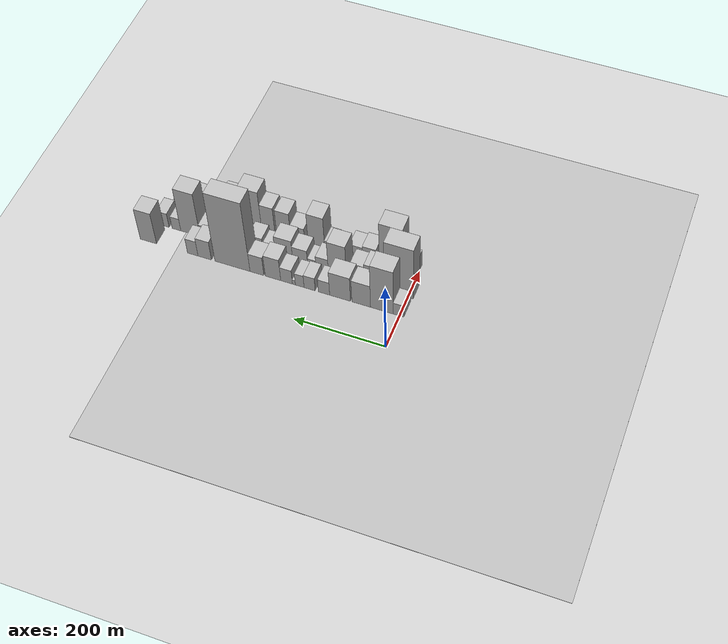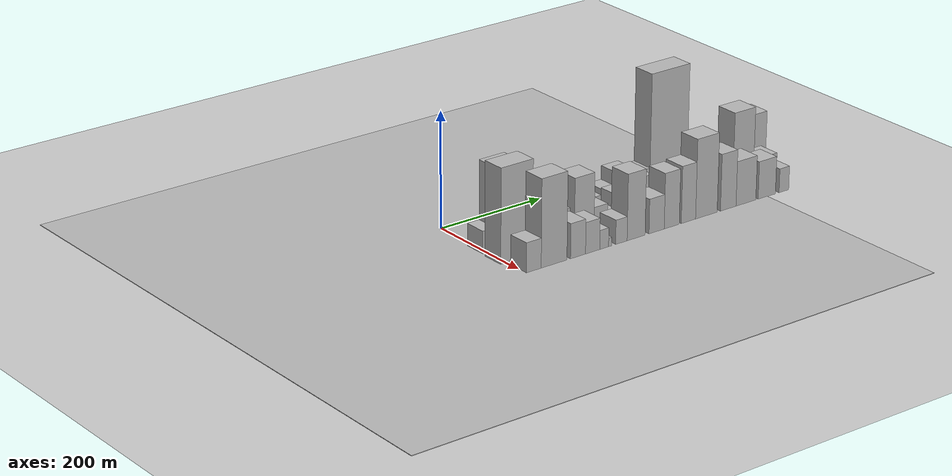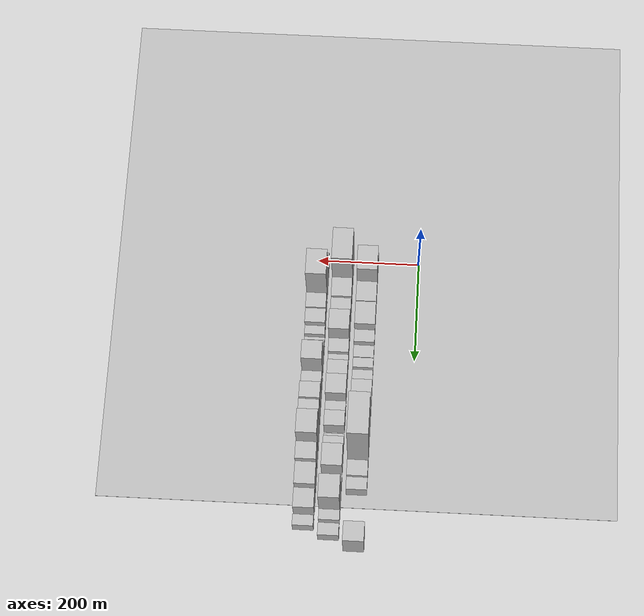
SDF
<sdf version="1.6">
 <world name="default">
  <include><name>ground_plane_1</name><uri>model://HANNAS_ground_plane</uri></include>
  <include>
   <name>ground_plane_2</name>
   <uri>model://HANNAS_ground_plane</uri>
   <pose>100 0 0  0 0 0</pose>
  </include>
  <model name="building_19">
   <static>1</static>
   <pose>100.0000 2.6886 0 0.000000 0.000000 0.000000</pose>
   <link name="link">
    <pose>0 0 19.50 0 0 0</pose>
    <collision name="collision"><geometry><box><size>40.0000 23.2246 39.0000</size></box></geometry></collision>
    <visual name="visual">
     <cast_shadows>0</cast_shadows>
     <geometry><box><size>40.0000 23.2246 39.0000</size></box></geometry>
     <material>
      <script>
       <uri>model://HANNAS_wall/materials/scripts</uri>
       <uri>model://HANNAS_wall/materials/textures</uri>
       <name>vrc/HANNAS_wall</name>
      </script>
     </material>
    </visual>
   </link>
  </model>
  <model name="building_20">
   <static>1</static>
   <pose>100.0000 38.9551 0 0.000000 0.000000 0.000000</pose>
   <link name="link">
    <pose>0 0 70.50 0 0 0</pose>
    <collision name="collision"><geometry><box><size>40.0000 49.3084 141.0000</size></box></geometry></collision>
    <visual name="visual">
     <cast_shadows>0</cast_shadows>
     <geometry><box><size>40.0000 49.3084 141.0000</size></box></geometry>
     <material>
      <script>
       <uri>model://HANNAS_wall/materials/scripts</uri>
       <uri>model://HANNAS_wall/materials/textures</uri>
       <name>vrc/HANNAS_wall</name>
      </script>
     </material>
    </visual>
   </link>
  </model>
  <model name="building_21">
   <static>1</static>
   <pose>100.0000 84.0371 0 0.000000 0.000000 0.000000</pose>
   <link name="link">
    <pose>0 0 36.00 0 0 0</pose>
    <collision name="collision"><geometry><box><size>40.0000 40.8557 72.0000</size></box></geometry></collision>
    <visual name="visual">
     <cast_shadows>0</cast_shadows>
     <geometry><box><size>40.0000 40.8557 72.0000</size></box></geometry>
     <material>
      <script>
       <uri>model://HANNAS_wall/materials/scripts</uri>
       <uri>model://HANNAS_wall/materials/textures</uri>
       <name>vrc/HANNAS_wall</name>
      </script>
     </material>
    </visual>
   </link>
  </model>
  <model name="building_22">
   <static>1</static>
   <pose>100.0000 130.4165 0 0.000000 0.000000 0.000000</pose>
   <link name="link">
    <pose>0 0 39.00 0 0 0</pose>
    <collision name="collision"><geometry><box><size>40.0000 45.9031 78.0000</size></box></geometry></collision>
    <visual name="visual">
     <cast_shadows>0</cast_shadows>
     <geometry><box><size>40.0000 45.9031 78.0000</size></box></geometry>
     <material>
      <script>
       <uri>model://HANNAS_wall/materials/scripts</uri>
       <uri>model://HANNAS_wall/materials/textures</uri>
       <name>vrc/HANNAS_wall</name>
      </script>
     </material>
    </visual>
   </link>
  </model>
  <model name="building_23">
   <static>1</static>
   <pose>100.0000 165.8833 0 0.000000 0.000000 0.000000</pose>
   <link name="link">
    <pose>0 0 21.00 0 0 0</pose>
    <collision name="collision"><geometry><box><size>40.0000 25.0304 42.0000</size></box></geometry></collision>
    <visual name="visual">
     <cast_shadows>0</cast_shadows>
     <geometry><box><size>40.0000 25.0304 42.0000</size></box></geometry>
     <material>
      <script>
       <uri>model://HANNAS_wall/materials/scripts</uri>
       <uri>model://HANNAS_wall/materials/textures</uri>
       <name>vrc/HANNAS_wall</name>
      </script>
     </material>
    </visual>
   </link>
  </model>
  <model name="building_24">
   <static>1</static>
   <pose>100.0000 197.6882 0 0.000000 0.000000 0.000000</pose>
   <link name="link">
    <pose>0 0 21.00 0 0 0</pose>
    <collision name="collision"><geometry><box><size>40.0000 24.5794 42.0000</size></box></geometry></collision>
    <visual name="visual">
     <cast_shadows>0</cast_shadows>
     <geometry><box><size>40.0000 24.5794 42.0000</size></box></geometry>
     <material>
      <script>
       <uri>model://HANNAS_wall/materials/scripts</uri>
       <uri>model://HANNAS_wall/materials/textures</uri>
       <name>vrc/HANNAS_wall</name>
      </script>
     </material>
    </visual>
   </link>
  </model>
  <model name="building_25">
   <static>1</static>
   <pose>100.0000 219.7532 0 0.000000 0.000000 0.000000</pose>
   <link name="link">
    <pose>0 0 19.50 0 0 0</pose>
    <collision name="collision"><geometry><box><size>40.0000 19.5507 39.0000</size></box></geometry></collision>
    <visual name="visual">
     <cast_shadows>0</cast_shadows>
     <geometry><box><size>40.0000 19.5507 39.0000</size></box></geometry>
     <material>
      <script>
       <uri>model://HANNAS_wall/materials/scripts</uri>
       <uri>model://HANNAS_wall/materials/textures</uri>
       <name>vrc/HANNAS_wall</name>
      </script>
     </material>
    </visual>
   </link>
  </model>
  <model name="building_26">
   <static>1</static>
   <pose>100.0000 232.7908 0 0.000000 0.000000 0.000000</pose>
   <link name="link">
    <pose>0 0 7.50 0 0 0</pose>
    <collision name="collision"><geometry><box><size>40.0000 6.5244 15.0000</size></box></geometry></collision>
    <visual name="visual">
     <cast_shadows>0</cast_shadows>
     <geometry><box><size>40.0000 6.5244 15.0000</size></box></geometry>
     <material>
      <script>
       <uri>model://HANNAS_wall/materials/scripts</uri>
       <uri>model://HANNAS_wall/materials/textures</uri>
       <name>vrc/HANNAS_wall</name>
      </script>
     </material>
    </visual>
   </link>
  </model>
  <model name="building_27">
   <static>1</static>
   <pose>100.0000 249.0915 0 0.000000 0.000000 0.000000</pose>
   <link name="link">
    <pose>0 0 22.50 0 0 0</pose>
    <collision name="collision"><geometry><box><size>40.0000 26.0770 45.0000</size></box></geometry></collision>
    <visual name="visual">
     <cast_shadows>0</cast_shadows>
     <geometry><box><size>40.0000 26.0770 45.0000</size></box></geometry>
     <material>
      <script>
       <uri>model://HANNAS_wall/materials/scripts</uri>
       <uri>model://HANNAS_wall/materials/textures</uri>
       <name>vrc/HANNAS_wall</name>
      </script>
     </material>
    </visual>
   </link>
  </model>
  <model name="building_28">
   <static>1</static>
   <pose>100.0000 279.5010 0 0.000000 0.000000 0.000000</pose>
   <link name="link">
    <pose>0 0 34.50 0 0 0</pose>
    <collision name="collision"><geometry><box><size>40.0000 34.7419 69.0000</size></box></geometry></collision>
    <visual name="visual">
     <cast_shadows>0</cast_shadows>
     <geometry><box><size>40.0000 34.7419 69.0000</size></box></geometry>
     <material>
      <script>
       <uri>model://HANNAS_wall/materials/scripts</uri>
       <uri>model://HANNAS_wall/materials/textures</uri>
       <name>vrc/HANNAS_wall</name>
      </script>
     </material>
    </visual>
   </link>
  </model>
  <model name="building_29">
   <static>1</static>
   <pose>100.0000 315.5436 0 0.000000 0.000000 0.000000</pose>
   <link name="link">
    <pose>0 0 30.00 0 0 0</pose>
    <collision name="collision"><geometry><box><size>40.0000 31.3432 60.0000</size></box></geometry></collision>
    <visual name="visual">
     <cast_shadows>0</cast_shadows>
     <geometry><box><size>40.0000 31.3432 60.0000</size></box></geometry>
     <material>
      <script>
       <uri>model://HANNAS_wall/materials/scripts</uri>
       <uri>model://HANNAS_wall/materials/textures</uri>
       <name>vrc/HANNAS_wall</name>
      </script>
     </material>
    </visual>
   </link>
  </model>
  <model name="building_30">
   <static>1</static>
   <pose>100.0000 371.1281 0 0.000000 0.000000 0.000000</pose>
   <link name="link">
    <pose>0 0 111.00 0 0 0</pose>
    <collision name="collision"><geometry><box><size>40.0000 79.8259 222.0000</size></box></geometry></collision>
    <visual name="visual">
     <cast_shadows>0</cast_shadows>
     <geometry><box><size>40.0000 79.8259 222.0000</size></box></geometry>
     <material>
      <script>
       <uri>model://HANNAS_wall/materials/scripts</uri>
       <uri>model://HANNAS_wall/materials/textures</uri>
       <name>vrc/HANNAS_wall</name>
      </script>
     </material>
    </visual>
   </link>
  </model>
  <model name="building_31">
   <static>1</static>
   <pose>100.0000 434.5013 0 0.000000 0.000000 0.000000</pose>
   <link name="link">
    <pose>0 0 30.00 0 0 0</pose>
    <collision name="collision"><geometry><box><size>40.0000 30.9204 60.0000</size></box></geometry></collision>
    <visual name="visual">
     <cast_shadows>0</cast_shadows>
     <geometry><box><size>40.0000 30.9204 60.0000</size></box></geometry>
     <material>
      <script>
       <uri>model://HANNAS_wall/materials/scripts</uri>
       <uri>model://HANNAS_wall/materials/textures</uri>
       <name>vrc/HANNAS_wall</name>
      </script>
     </material>
    </visual>
   </link>
  </model>
  <model name="building_32">
   <static>1</static>
   <pose>100.0000 462.0291 0 0.000000 0.000000 0.000000</pose>
   <link name="link">
    <pose>0 0 24.00 0 0 0</pose>
    <collision name="collision"><geometry><box><size>40.0000 24.1351 48.0000</size></box></geometry></collision>
    <visual name="visual">
     <cast_shadows>0</cast_shadows>
     <geometry><box><size>40.0000 24.1351 48.0000</size></box></geometry>
     <material>
      <script>
       <uri>model://HANNAS_wall/materials/scripts</uri>
       <uri>model://HANNAS_wall/materials/textures</uri>
       <name>vrc/HANNAS_wall</name>
      </script>
     </material>
    </visual>
   </link>
  </model>
  <model name="building_33">
   <static>1</static>
   <pose>100.0000 564.8013 0 0.000000 0.000000 0.000000</pose>
   <link name="link">
    <pose>0 0 49.50 0 0 0</pose>
    <collision name="collision"><geometry><box><size>40.0000 37.8031 99.0000</size></box></geometry></collision>
    <visual name="visual">
     <cast_shadows>0</cast_shadows>
     <geometry><box><size>40.0000 37.8031 99.0000</size></box></geometry>
     <material>
      <script>
       <uri>model://HANNAS_wall/materials/scripts</uri>
       <uri>model://HANNAS_wall/materials/textures</uri>
       <name>vrc/HANNAS_wall</name>
      </script>
     </material>
    </visual>
   </link>
  </model>
  <model name="building_47">
   <static>1</static>
   <pose>149.0000 20.1879 0 0.000000 0.000000 0.000000</pose>
   <link name="link">
    <pose>0 0 81.00 0 0 0</pose>
    <collision name="collision"><geometry><box><size>40.0000 63.2228 162.0000</size></box></geometry></collision>
    <visual name="visual">
     <cast_shadows>0</cast_shadows>
     <geometry><box><size>40.0000 63.2228 162.0000</size></box></geometry>
     <material>
      <script>
       <uri>model://HANNAS_wall/materials/scripts</uri>
       <uri>model://HANNAS_wall/materials/textures</uri>
       <name>vrc/HANNAS_wall</name>
      </script>
     </material>
    </visual>
   </link>
  </model>
  <model name="building_48">
   <static>1</static>
   <pose>149.0000 76.2985 0 0.000000 0.000000 0.000000</pose>
   <link name="link">
    <pose>0 0 34.50 0 0 0</pose>
    <collision name="collision"><geometry><box><size>40.0000 38.9984 69.0000</size></box></geometry></collision>
    <visual name="visual">
     <cast_shadows>0</cast_shadows>
     <geometry><box><size>40.0000 38.9984 69.0000</size></box></geometry>
     <material>
      <script>
       <uri>model://HANNAS_wall/materials/scripts</uri>
       <uri>model://HANNAS_wall/materials/textures</uri>
       <name>vrc/HANNAS_wall</name>
      </script>
     </material>
    </visual>
   </link>
  </model>
  <model name="building_49">
   <static>1</static>
   <pose>149.0000 111.0352 0 0.000000 0.000000 0.000000</pose>
   <link name="link">
    <pose>0 0 30.00 0 0 0</pose>
    <collision name="collision"><geometry><box><size>40.0000 30.4750 60.0000</size></box></geometry></collision>
    <visual name="visual">
     <cast_shadows>0</cast_shadows>
     <geometry><box><size>40.0000 30.4750 60.0000</size></box></geometry>
     <material>
      <script>
       <uri>model://HANNAS_wall/materials/scripts</uri>
       <uri>model://HANNAS_wall/materials/textures</uri>
       <name>vrc/HANNAS_wall</name>
      </script>
     </material>
    </visual>
   </link>
  </model>
  <model name="building_50">
   <static>1</static>
   <pose>149.0000 155.3155 0 0.000000 0.000000 0.000000</pose>
   <link name="link">
    <pose>0 0 54.00 0 0 0</pose>
    <collision name="collision"><geometry><box><size>40.0000 40.0858 108.0000</size></box></geometry></collision>
    <visual name="visual">
     <cast_shadows>0</cast_shadows>
     <geometry><box><size>40.0000 40.0858 108.0000</size></box></geometry>
     <material>
      <script>
       <uri>model://HANNAS_wall/materials/scripts</uri>
       <uri>model://HANNAS_wall/materials/textures</uri>
       <name>vrc/HANNAS_wall</name>
      </script>
     </material>
    </visual>
   </link>
  </model>
  <model name="building_51">
   <static>1</static>
   <pose>149.0000 189.1798 0 0.000000 0.000000 0.000000</pose>
   <link name="link">
    <pose>0 0 24.00 0 0 0</pose>
    <collision name="collision"><geometry><box><size>40.0000 27.6428 48.0000</size></box></geometry></collision>
    <visual name="visual">
     <cast_shadows>0</cast_shadows>
     <geometry><box><size>40.0000 27.6428 48.0000</size></box></geometry>
     <material>
      <script>
       <uri>model://HANNAS_wall/materials/scripts</uri>
       <uri>model://HANNAS_wall/materials/textures</uri>
       <name>vrc/HANNAS_wall</name>
      </script>
     </material>
    </visual>
   </link>
  </model>
  <model name="building_52">
   <static>1</static>
   <pose>149.0000 212.2132 0 0.000000 0.000000 0.000000</pose>
   <link name="link">
    <pose>0 0 16.50 0 0 0</pose>
    <collision name="collision"><geometry><box><size>40.0000 18.4239 33.0000</size></box></geometry></collision>
    <visual name="visual">
     <cast_shadows>0</cast_shadows>
     <geometry><box><size>40.0000 18.4239 33.0000</size></box></geometry>
     <material>
      <script>
       <uri>model://HANNAS_wall/materials/scripts</uri>
       <uri>model://HANNAS_wall/materials/textures</uri>
       <name>vrc/HANNAS_wall</name>
      </script>
     </material>
    </visual>
   </link>
  </model>
  <model name="building_53">
   <static>1</static>
   <pose>149.0000 238.1233 0 0.000000 0.000000 0.000000</pose>
   <link name="link">
    <pose>0 0 28.50 0 0 0</pose>
    <collision name="collision"><geometry><box><size>40.0000 33.3963 57.0000</size></box></geometry></collision>
    <visual name="visual">
     <cast_shadows>0</cast_shadows>
     <geometry><box><size>40.0000 33.3963 57.0000</size></box></geometry>
     <material>
      <script>
       <uri>model://HANNAS_wall/materials/scripts</uri>
       <uri>model://HANNAS_wall/materials/textures</uri>
       <name>vrc/HANNAS_wall</name>
      </script>
     </material>
    </visual>
   </link>
  </model>
  <model name="building_54">
   <static>1</static>
   <pose>149.0000 274.5101 0 0.000000 0.000000 0.000000</pose>
   <link name="link">
    <pose>0 0 37.50 0 0 0</pose>
    <collision name="collision"><geometry><box><size>40.0000 39.3773 75.0000</size></box></geometry></collision>
    <visual name="visual">
     <cast_shadows>0</cast_shadows>
     <geometry><box><size>40.0000 39.3773 75.0000</size></box></geometry>
     <material>
      <script>
       <uri>model://HANNAS_wall/materials/scripts</uri>
       <uri>model://HANNAS_wall/materials/textures</uri>
       <name>vrc/HANNAS_wall</name>
      </script>
     </material>
    </visual>
   </link>
  </model>
  <model name="building_55">
   <static>1</static>
   <pose>149.0000 310.4948 0 0.000000 0.000000 0.000000</pose>
   <link name="link">
    <pose>0 0 19.50 0 0 0</pose>
    <collision name="collision"><geometry><box><size>40.0000 22.5922 39.0000</size></box></geometry></collision>
    <visual name="visual">
     <cast_shadows>0</cast_shadows>
     <geometry><box><size>40.0000 22.5922 39.0000</size></box></geometry>
     <material>
      <script>
       <uri>model://HANNAS_wall/materials/scripts</uri>
       <uri>model://HANNAS_wall/materials/textures</uri>
       <name>vrc/HANNAS_wall</name>
      </script>
     </material>
    </visual>
   </link>
  </model>
  <model name="building_56">
   <static>1</static>
   <pose>149.0000 337.1772 0 0.000000 0.000000 0.000000</pose>
   <link name="link">
    <pose>0 0 27.00 0 0 0</pose>
    <collision name="collision"><geometry><box><size>40.0000 30.7726 54.0000</size></box></geometry></collision>
    <visual name="visual">
     <cast_shadows>0</cast_shadows>
     <geometry><box><size>40.0000 30.7726 54.0000</size></box></geometry>
     <material>
      <script>
       <uri>model://HANNAS_wall/materials/scripts</uri>
       <uri>model://HANNAS_wall/materials/textures</uri>
       <name>vrc/HANNAS_wall</name>
      </script>
     </material>
    </visual>
   </link>
  </model>
  <model name="building_57">
   <static>1</static>
   <pose>149.0000 364.6392 0 0.000000 0.000000 0.000000</pose>
   <link name="link">
    <pose>0 0 10.50 0 0 0</pose>
    <collision name="collision"><geometry><box><size>40.0000 10.1513 21.0000</size></box></geometry></collision>
    <visual name="visual">
     <cast_shadows>0</cast_shadows>
     <geometry><box><size>40.0000 10.1513 21.0000</size></box></geometry>
     <material>
      <script>
       <uri>model://HANNAS_wall/materials/scripts</uri>
       <uri>model://HANNAS_wall/materials/textures</uri>
       <name>vrc/HANNAS_wall</name>
      </script>
     </material>
    </visual>
   </link>
  </model>
  <model name="building_58">
   <static>1</static>
   <pose>149.0000 381.1021 0 0.000000 0.000000 0.000000</pose>
   <link name="link">
    <pose>0 0 21.00 0 0 0</pose>
    <collision name="collision"><geometry><box><size>40.0000 22.7745 42.0000</size></box></geometry></collision>
    <visual name="visual">
     <cast_shadows>0</cast_shadows>
     <geometry><box><size>40.0000 22.7745 42.0000</size></box></geometry>
     <material>
      <script>
       <uri>model://HANNAS_wall/materials/scripts</uri>
       <uri>model://HANNAS_wall/materials/textures</uri>
       <name>vrc/HANNAS_wall</name>
      </script>
     </material>
    </visual>
   </link>
  </model>
  <model name="building_59">
   <static>1</static>
   <pose>149.0000 414.0976 0 0.000000 0.000000 0.000000</pose>
   <link name="link">
    <pose>0 0 37.50 0 0 0</pose>
    <collision name="collision"><geometry><box><size>40.0000 43.2164 75.0000</size></box></geometry></collision>
    <visual name="visual">
     <cast_shadows>0</cast_shadows>
     <geometry><box><size>40.0000 43.2164 75.0000</size></box></geometry>
     <material>
      <script>
       <uri>model://HANNAS_wall/materials/scripts</uri>
       <uri>model://HANNAS_wall/materials/textures</uri>
       <name>vrc/HANNAS_wall</name>
      </script>
     </material>
    </visual>
   </link>
  </model>
  <model name="building_60">
   <static>1</static>
   <pose>149.0000 456.7561 0 0.000000 0.000000 0.000000</pose>
   <link name="link">
    <pose>0 0 19.50 0 0 0</pose>
    <collision name="collision"><geometry><box><size>40.0000 22.1008 39.0000</size></box></geometry></collision>
    <visual name="visual">
     <cast_shadows>0</cast_shadows>
     <geometry><box><size>40.0000 22.1008 39.0000</size></box></geometry>
     <material>
      <script>
       <uri>model://HANNAS_wall/materials/scripts</uri>
       <uri>model://HANNAS_wall/materials/textures</uri>
       <name>vrc/HANNAS_wall</name>
      </script>
     </material>
    </visual>
   </link>
  </model>
  <model name="building_61">
   <static>1</static>
   <pose>149.0000 490.1723 0 0.000000 0.000000 0.000000</pose>
   <link name="link">
    <pose>0 0 69.00 0 0 0</pose>
    <collision name="collision"><geometry><box><size>40.0000 44.7317 138.0000</size></box></geometry></collision>
    <visual name="visual">
     <cast_shadows>0</cast_shadows>
     <geometry><box><size>40.0000 44.7317 138.0000</size></box></geometry>
     <material>
      <script>
       <uri>model://HANNAS_wall/materials/scripts</uri>
       <uri>model://HANNAS_wall/materials/textures</uri>
       <name>vrc/HANNAS_wall</name>
      </script>
     </material>
    </visual>
   </link>
  </model>
  <model name="building_62">
   <static>1</static>
   <pose>149.0000 522.7117 0 0.000000 0.000000 0.000000</pose>
   <link name="link">
    <pose>0 0 19.50 0 0 0</pose>
    <collision name="collision"><geometry><box><size>40.0000 20.3472 39.0000</size></box></geometry></collision>
    <visual name="visual">
     <cast_shadows>0</cast_shadows>
     <geometry><box><size>40.0000 20.3472 39.0000</size></box></geometry>
     <material>
      <script>
       <uri>model://HANNAS_wall/materials/scripts</uri>
       <uri>model://HANNAS_wall/materials/textures</uri>
       <name>vrc/HANNAS_wall</name>
      </script>
     </material>
    </visual>
   </link>
  </model>
  <model name="building_63">
   <static>1</static>
   <pose>149.0000 551.7992 0 0.000000 0.000000 0.000000</pose>
   <link name="link">
    <pose>0 0 22.50 0 0 0</pose>
    <collision name="collision"><geometry><box><size>40.0000 23.8276 45.0000</size></box></geometry></collision>
    <visual name="visual">
     <cast_shadows>0</cast_shadows>
     <geometry><box><size>40.0000 23.8276 45.0000</size></box></geometry>
     <material>
      <script>
       <uri>model://HANNAS_wall/materials/scripts</uri>
       <uri>model://HANNAS_wall/materials/textures</uri>
       <name>vrc/HANNAS_wall</name>
      </script>
     </material>
    </visual>
   </link>
  </model>
  <model name="building_82">
   <static>1</static>
   <pose>198.0000 15.0562 0 0.000000 0.000000 0.000000</pose>
   <link name="link">
    <pose>0 0 25.50 0 0 0</pose>
    <collision name="collision"><geometry><box><size>40.0000 29.1229 51.0000</size></box></geometry></collision>
    <visual name="visual">
     <cast_shadows>0</cast_shadows>
     <geometry><box><size>40.0000 29.1229 51.0000</size></box></geometry>
     <material>
      <script>
       <uri>model://HANNAS_wall/materials/scripts</uri>
       <uri>model://HANNAS_wall/materials/textures</uri>
       <name>vrc/HANNAS_wall</name>
      </script>
     </material>
    </visual>
   </link>
  </model>
  <model name="building_83">
   <static>1</static>
   <pose>198.0000 55.2076 0 0.000000 0.000000 0.000000</pose>
   <link name="link">
    <pose>0 0 75.00 0 0 0</pose>
    <collision name="collision"><geometry><box><size>40.0000 51.1798 150.0000</size></box></geometry></collision>
    <visual name="visual">
     <cast_shadows>0</cast_shadows>
     <geometry><box><size>40.0000 51.1798 150.0000</size></box></geometry>
     <material>
      <script>
       <uri>model://HANNAS_wall/materials/scripts</uri>
       <uri>model://HANNAS_wall/materials/textures</uri>
       <name>vrc/HANNAS_wall</name>
      </script>
     </material>
    </visual>
   </link>
  </model>
  <model name="building_84">
   <static>1</static>
   <pose>198.0000 102.9101 0 0.000000 0.000000 0.000000</pose>
   <link name="link">
    <pose>0 0 30.00 0 0 0</pose>
    <collision name="collision"><geometry><box><size>40.0000 30.2252 60.0000</size></box></geometry></collision>
    <visual name="visual">
     <cast_shadows>0</cast_shadows>
     <geometry><box><size>40.0000 30.2252 60.0000</size></box></geometry>
     <material>
      <script>
       <uri>model://HANNAS_wall/materials/scripts</uri>
       <uri>model://HANNAS_wall/materials/textures</uri>
       <name>vrc/HANNAS_wall</name>
      </script>
     </material>
    </visual>
   </link>
  </model>
  <model name="building_85">
   <static>1</static>
   <pose>198.0000 132.3927 0 0.000000 0.000000 0.000000</pose>
   <link name="link">
    <pose>0 0 27.00 0 0 0</pose>
    <collision name="collision"><geometry><box><size>40.0000 28.7399 54.0000</size></box></geometry></collision>
    <visual name="visual">
     <cast_shadows>0</cast_shadows>
     <geometry><box><size>40.0000 28.7399 54.0000</size></box></geometry>
     <material>
      <script>
       <uri>model://HANNAS_wall/materials/scripts</uri>
       <uri>model://HANNAS_wall/materials/textures</uri>
       <name>vrc/HANNAS_wall</name>
      </script>
     </material>
    </visual>
   </link>
  </model>
  <model name="building_86">
   <static>1</static>
   <pose>198.0000 155.6918 0 0.000000 0.000000 0.000000</pose>
   <link name="link">
    <pose>0 0 16.50 0 0 0</pose>
    <collision name="collision"><geometry><box><size>40.0000 17.8583 33.0000</size></box></geometry></collision>
    <visual name="visual">
     <cast_shadows>0</cast_shadows>
     <geometry><box><size>40.0000 17.8583 33.0000</size></box></geometry>
     <material>
      <script>
       <uri>model://HANNAS_wall/materials/scripts</uri>
       <uri>model://HANNAS_wall/materials/textures</uri>
       <name>vrc/HANNAS_wall</name>
      </script>
     </material>
    </visual>
   </link>
  </model>
  <model name="building_87">
   <static>1</static>
   <pose>198.0000 167.8351 0 0.000000 0.000000 0.000000</pose>
   <link name="link">
    <pose>0 0 7.50 0 0 0</pose>
    <collision name="collision"><geometry><box><size>40.0000 6.4284 15.0000</size></box></geometry></collision>
    <visual name="visual">
     <cast_shadows>0</cast_shadows>
     <geometry><box><size>40.0000 6.4284 15.0000</size></box></geometry>
     <material>
      <script>
       <uri>model://HANNAS_wall/materials/scripts</uri>
       <uri>model://HANNAS_wall/materials/textures</uri>
       <name>vrc/HANNAS_wall</name>
      </script>
     </material>
    </visual>
   </link>
  </model>
  <model name="building_88">
   <static>1</static>
   <pose>198.0000 190.8068 0 0.000000 0.000000 0.000000</pose>
   <link name="link">
    <pose>0 0 21.00 0 0 0</pose>
    <collision name="collision"><geometry><box><size>40.0000 23.5151 42.0000</size></box></geometry></collision>
    <visual name="visual">
     <cast_shadows>0</cast_shadows>
     <geometry><box><size>40.0000 23.5151 42.0000</size></box></geometry>
     <material>
      <script>
       <uri>model://HANNAS_wall/materials/scripts</uri>
       <uri>model://HANNAS_wall/materials/textures</uri>
       <name>vrc/HANNAS_wall</name>
      </script>
     </material>
    </visual>
   </link>
  </model>
  <model name="building_89">
   <static>1</static>
   <pose>198.0000 221.0773 0 0.000000 0.000000 0.000000</pose>
   <link name="link">
    <pose>0 0 57.00 0 0 0</pose>
    <collision name="collision"><geometry><box><size>40.0000 37.0258 114.0000</size></box></geometry></collision>
    <visual name="visual">
     <cast_shadows>0</cast_shadows>
     <geometry><box><size>40.0000 37.0258 114.0000</size></box></geometry>
     <material>
      <script>
       <uri>model://HANNAS_wall/materials/scripts</uri>
       <uri>model://HANNAS_wall/materials/textures</uri>
       <name>vrc/HANNAS_wall</name>
      </script>
     </material>
    </visual>
   </link>
  </model>
  <model name="building_90">
   <static>1</static>
   <pose>198.0000 263.4361 0 0.000000 0.000000 0.000000</pose>
   <link name="link">
    <pose>0 0 30.00 0 0 0</pose>
    <collision name="collision"><geometry><box><size>40.0000 31.6918 60.0000</size></box></geometry></collision>
    <visual name="visual">
     <cast_shadows>0</cast_shadows>
     <geometry><box><size>40.0000 31.6918 60.0000</size></box></geometry>
     <material>
      <script>
       <uri>model://HANNAS_wall/materials/scripts</uri>
       <uri>model://HANNAS_wall/materials/textures</uri>
       <name>vrc/HANNAS_wall</name>
      </script>
     </material>
    </visual>
   </link>
  </model>
  <model name="building_91">
   <static>1</static>
   <pose>198.0000 295.1300 0 0.000000 0.000000 0.000000</pose>
   <link name="link">
    <pose>0 0 48.00 0 0 0</pose>
    <collision name="collision"><geometry><box><size>40.0000 31.6961 96.0000</size></box></geometry></collision>
    <visual name="visual">
     <cast_shadows>0</cast_shadows>
     <geometry><box><size>40.0000 31.6961 96.0000</size></box></geometry>
     <material>
      <script>
       <uri>model://HANNAS_wall/materials/scripts</uri>
       <uri>model://HANNAS_wall/materials/textures</uri>
       <name>vrc/HANNAS_wall</name>
      </script>
     </material>
    </visual>
   </link>
  </model>
  <model name="building_92">
   <static>1</static>
   <pose>198.0000 330.1177 0 0.000000 0.000000 0.000000</pose>
   <link name="link">
    <pose>0 0 49.50 0 0 0</pose>
    <collision name="collision"><geometry><box><size>40.0000 30.2793 99.0000</size></box></geometry></collision>
    <visual name="visual">
     <cast_shadows>0</cast_shadows>
     <geometry><box><size>40.0000 30.2793 99.0000</size></box></geometry>
     <material>
      <script>
       <uri>model://HANNAS_wall/materials/scripts</uri>
       <uri>model://HANNAS_wall/materials/textures</uri>
       <name>vrc/HANNAS_wall</name>
      </script>
     </material>
    </visual>
   </link>
  </model>
  <model name="building_93">
   <static>1</static>
   <pose>198.0000 368.2131 0 0.000000 0.000000 0.000000</pose>
   <link name="link">
    <pose>0 0 69.00 0 0 0</pose>
    <collision name="collision"><geometry><box><size>40.0000 45.9114 138.0000</size></box></geometry></collision>
    <visual name="visual">
     <cast_shadows>0</cast_shadows>
     <geometry><box><size>40.0000 45.9114 138.0000</size></box></geometry>
     <material>
      <script>
       <uri>model://HANNAS_wall/materials/scripts</uri>
       <uri>model://HANNAS_wall/materials/textures</uri>
       <name>vrc/HANNAS_wall</name>
      </script>
     </material>
    </visual>
   </link>
  </model>
  <model name="building_94">
   <static>1</static>
   <pose>198.0000 414.9088 0 0.000000 0.000000 0.000000</pose>
   <link name="link">
    <pose>0 0 49.50 0 0 0</pose>
    <collision name="collision"><geometry><box><size>40.0000 33.4800 99.0000</size></box></geometry></collision>
    <visual name="visual">
     <cast_shadows>0</cast_shadows>
     <geometry><box><size>40.0000 33.4800 99.0000</size></box></geometry>
     <material>
      <script>
       <uri>model://HANNAS_wall/materials/scripts</uri>
       <uri>model://HANNAS_wall/materials/textures</uri>
       <name>vrc/HANNAS_wall</name>
      </script>
     </material>
    </visual>
   </link>
  </model>
  <model name="building_95">
   <static>1</static>
   <pose>198.0000 453.1274 0 0.000000 0.000000 0.000000</pose>
   <link name="link">
    <pose>0 0 39.00 0 0 0</pose>
    <collision name="collision"><geometry><box><size>40.0000 42.9572 78.0000</size></box></geometry></collision>
    <visual name="visual">
     <cast_shadows>0</cast_shadows>
     <geometry><box><size>40.0000 42.9572 78.0000</size></box></geometry>
     <material>
      <script>
       <uri>model://HANNAS_wall/materials/scripts</uri>
       <uri>model://HANNAS_wall/materials/textures</uri>
       <name>vrc/HANNAS_wall</name>
      </script>
     </material>
    </visual>
   </link>
  </model>
  <model name="building_96">
   <static>1</static>
   <pose>198.0000 498.5312 0 0.000000 0.000000 0.000000</pose>
   <link name="link">
    <pose>0 0 33.00 0 0 0</pose>
    <collision name="collision"><geometry><box><size>40.0000 37.8505 66.0000</size></box></geometry></collision>
    <visual name="visual">
     <cast_shadows>0</cast_shadows>
     <geometry><box><size>40.0000 37.8505 66.0000</size></box></geometry>
     <material>
      <script>
       <uri>model://HANNAS_wall/materials/scripts</uri>
       <uri>model://HANNAS_wall/materials/textures</uri>
       <name>vrc/HANNAS_wall</name>
      </script>
     </material>
    </visual>
   </link>
  </model>
  <model name="building_97">
   <static>1</static>
   <pose>198.0000 536.1050 0 0.000000 0.000000 0.000000</pose>
   <link name="link">
    <pose>0 0 21.00 0 0 0</pose>
    <collision name="collision"><geometry><box><size>40.0000 21.2970 42.0000</size></box></geometry></collision>
    <visual name="visual">
     <cast_shadows>0</cast_shadows>
     <geometry><box><size>40.0000 21.2970 42.0000</size></box></geometry>
     <material>
      <script>
       <uri>model://HANNAS_wall/materials/scripts</uri>
       <uri>model://HANNAS_wall/materials/textures</uri>
       <name>vrc/HANNAS_wall</name>
      </script>
     </material>
    </visual>
   </link>
  </model>
 </world>
</sdf>
